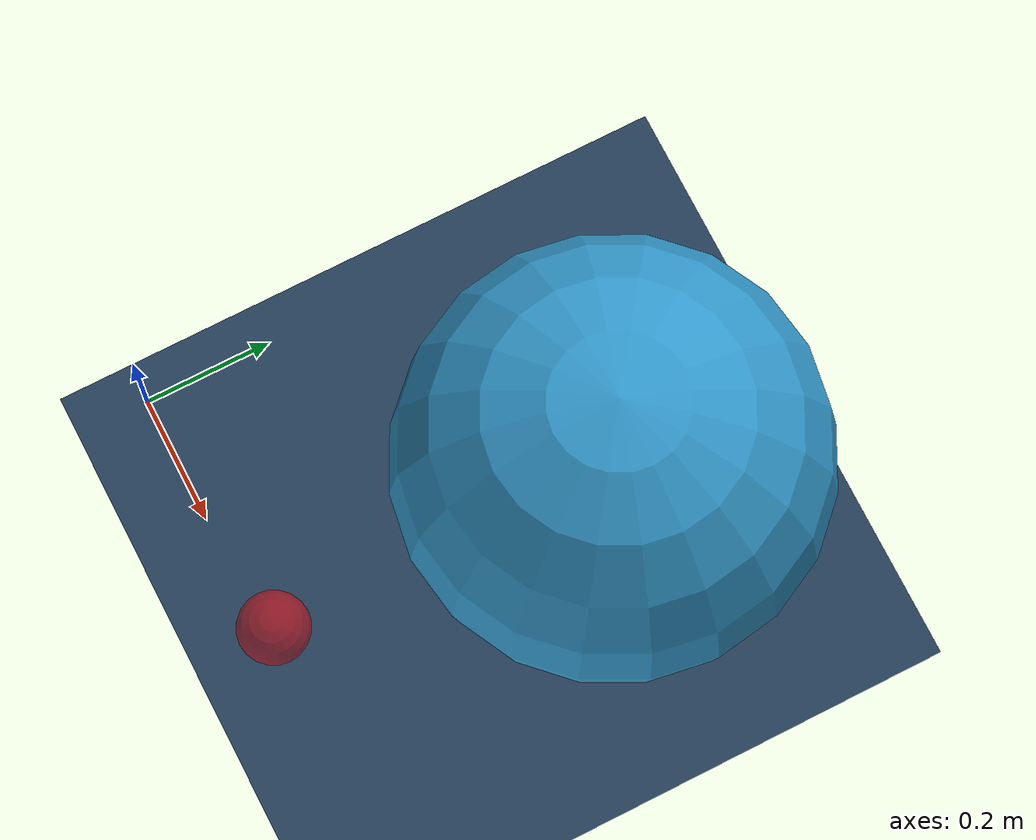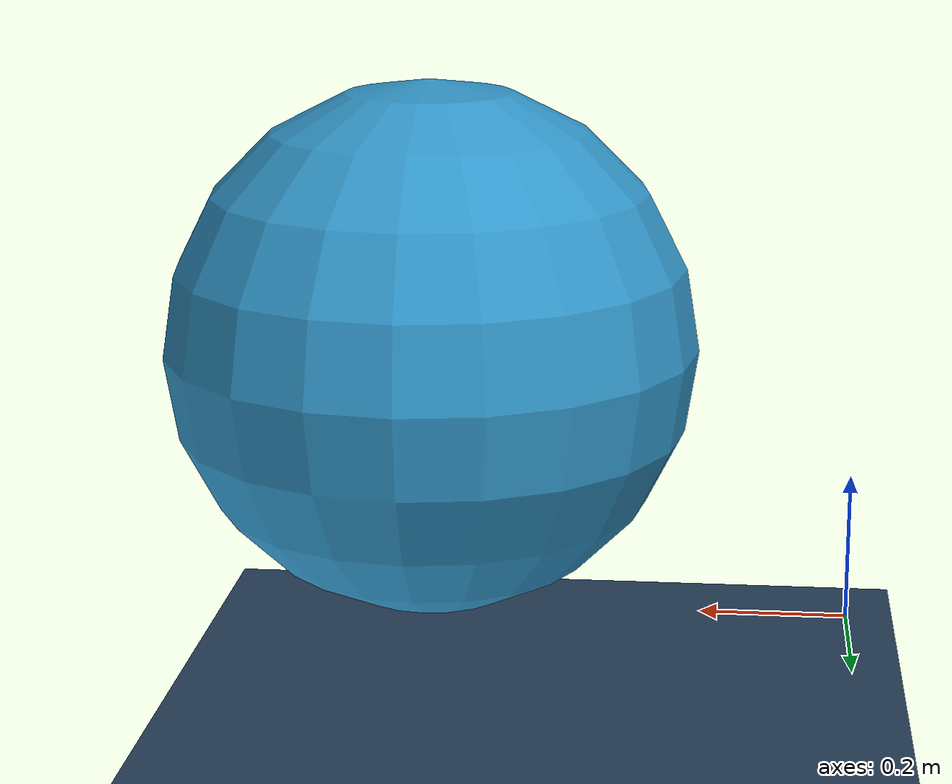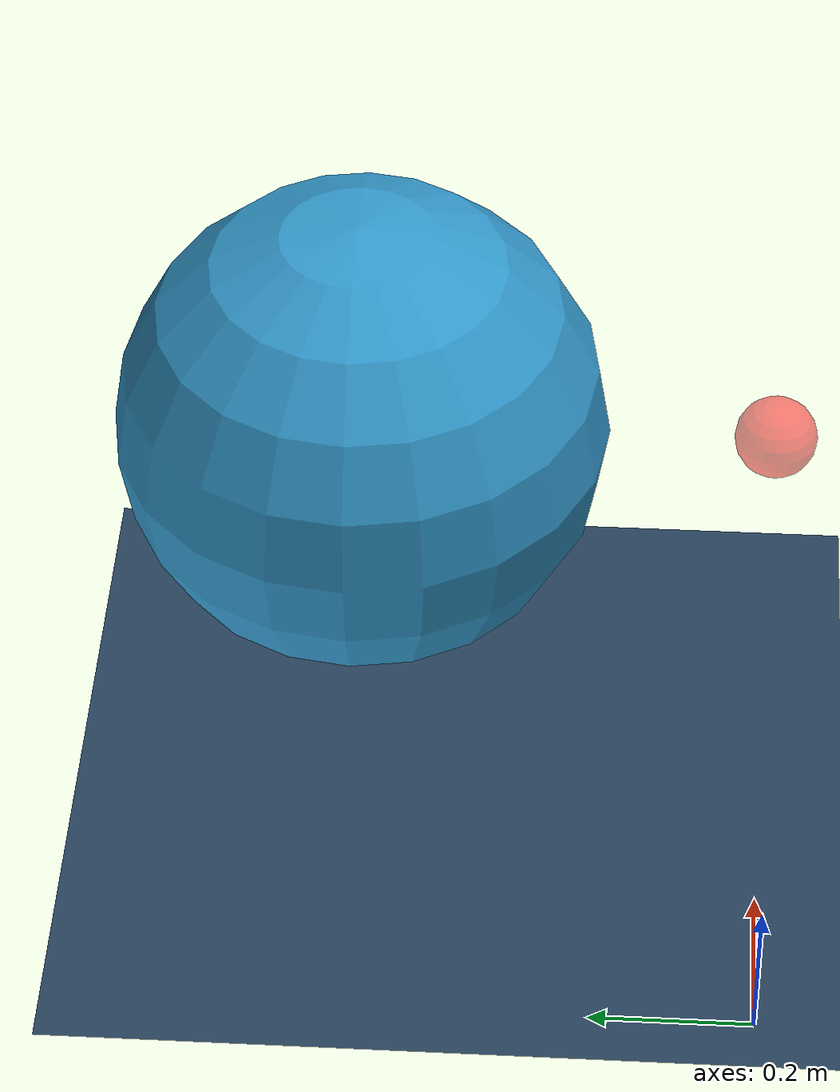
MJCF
<mujoco model="obstacle scene">
  <statistic center="0.3 0 0.4" extent="1"/>

  <visual>
    <headlight diffuse="0.6 0.6 0.6" ambient="0.3 0.3 0.3" specular="0 0 0"/>
    <rgba haze="0.15 0.25 0.35 1"/>
    <global azimuth="120" elevation="-20"/>
  </visual>

  <asset>
    <texture type="skybox" builtin="gradient" rgb1="0.3 0.5 0.7" rgb2="0 0 0" width="512" height="3072"/>
    <texture type="2d" name="groundplane" builtin="checker" mark="edge" rgb1="0.2 0.3 0.4" rgb2="0.1 0.2 0.3"
      markrgb="0.8 0.8 0.8" width="300" height="300"/>
    <material name="groundplane" texture="groundplane" texuniform="true" texrepeat="5 5" reflectance="0.2"/>
  </asset>

  <worldbody>
    <light pos="0 0 1.5" dir="0 0 -1" directional="true"/>
    <geom name="floor" size="0 0 0.05" type="plane" material="groundplane"/>

    <body name="obstacle" pos="0.5 0.5 0.5">
        <geom name="sphere_obstacle" type="sphere" size="0.3" rgba="0.2 0.6 0.8 1"/>
    </body>

    <body name="target" mocap="true" pos="0.5 0 0.5">
      <geom name="target_geom" type="sphere" size="0.05" rgba="1 0 0 0.5" contype="0" conaffinity="0"/>
    </body>
  </worldbody>
</mujoco>
